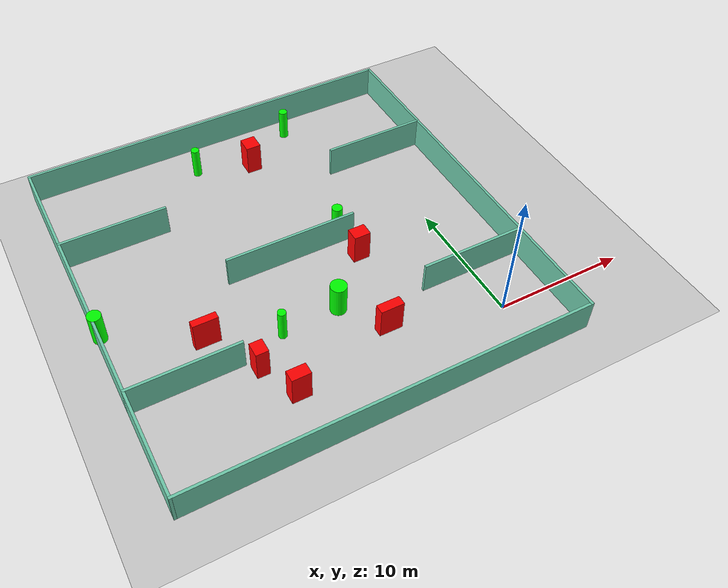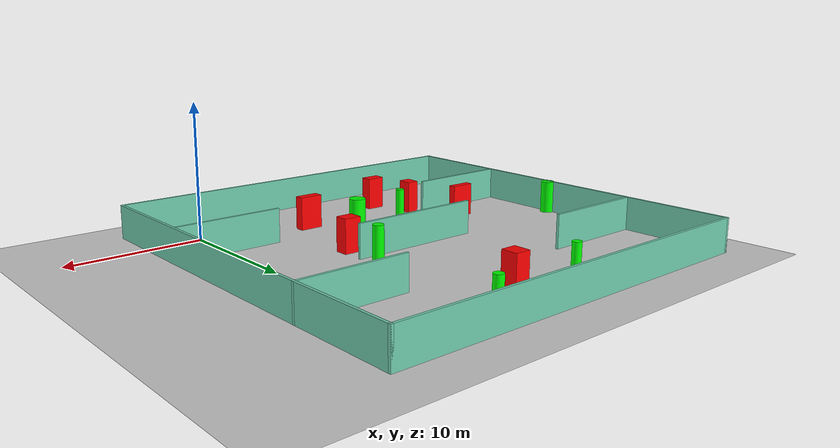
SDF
<sdf version="1.7">
 <world name="default">
  <light name="sun" type="directional">
   <pose>0 0 10 0 -0 0</pose>
   <diffuse>0.8 0.8 0.8 1</diffuse>
   <specular>0.2 0.2 0.2 1</specular>
   <attenuation>
    <range>1000</range>
    <constant>0.9</constant>
    <linear>0.01</linear>
    <quadratic>0.001</quadratic>
   </attenuation>
   <direction>-0.5 0.1 -0.9</direction>
   <spot><inner_angle>0</inner_angle><outer_angle>0</outer_angle><falloff>0</falloff></spot>
  </light>
  <model name="ground_plane">
   <static>1</static>
   <link name="link">
    <collision name="collision">
     <geometry><plane><normal>0 0 1</normal><size>100 100</size></plane></geometry>
     <surface>
      <contact><collide_bitmask>65535</collide_bitmask></contact>
      <friction><ode><mu>100</mu><mu2>50</mu2></ode></friction>
     </surface>
    </collision>
    <visual name="visual">
     <cast_shadows>0</cast_shadows>
     <geometry><plane><normal>0 0 1</normal><size>100 100</size></plane></geometry>
     <material>
      <script><uri>file://media/materials/scripts/gazebo.material</uri><name>Gazebo/Grey</name></script>
     </material>
    </visual>
   </link>
  </model>
  <gravity>0 0 -9.8</gravity>
  <magnetic_field>6e-06 2.3e-05 -4.2e-05</magnetic_field>
  <atmosphere type="adiabatic"/>
  <physics type="ode">
   <max_step_size>0.001</max_step_size>
   <real_time_factor>1</real_time_factor>
   <real_time_update_rate>1000</real_time_update_rate>
  </physics>
  <scene><ambient>0.4 0.4 0.4 1</ambient><background>0.7 0.7 0.7 1</background><shadows>1</shadows></scene>
  <spherical_coordinates>
   <surface_model>EARTH_WGS84</surface_model>
   <latitude_deg>0</latitude_deg>
   <longitude_deg>0</longitude_deg>
   <elevation>0</elevation>
   <heading_deg>0</heading_deg>
  </spherical_coordinates>
  <model name="my_base_walls">
   <link name="Wall_10">
    <collision name="Wall_10_Collision">
     <geometry><box><size>8.2 0.2 2.5</size></box></geometry>
     <pose>0 0 1.25 0 -0 0</pose>
    </collision>
    <visual name="Wall_10_Visual">
     <pose>0 0 1.25 0 -0 0</pose>
     <geometry><box><size>8.2 0.2 2.5</size></box></geometry>
     <material>
      <script><uri>file://media/materials/scripts/gazebo.material</uri><name>Gazebo/Grey</name></script>
      <ambient>0.435294 0.796078 0.67451 1</ambient>
     </material>
     <meta><layer>0</layer></meta>
    </visual>
    <pose>-11 -7 0 0 -0 0</pose>
   </link>
   <link name="Wall_12">
    <collision name="Wall_12_Collision">
     <geometry><box><size>8.2 0.2 2.5</size></box></geometry>
     <pose>0 0 1.25 0 -0 0</pose>
    </collision>
    <visual name="Wall_12_Visual">
     <pose>0 0 1.25 0 -0 0</pose>
     <geometry><box><size>8.2 0.2 2.5</size></box></geometry>
     <material>
      <script><uri>file://media/materials/scripts/gazebo.material</uri><name>Gazebo/Grey</name></script>
      <ambient>0.435294 0.796078 0.67451 1</ambient>
     </material>
     <meta><layer>0</layer></meta>
    </visual>
    <pose>-11 7 0 0 -0 0</pose>
   </link>
   <link name="Wall_14">
    <collision name="Wall_14_Collision">
     <geometry><box><size>8.2 0.2 2.5</size></box></geometry>
     <pose>0 0 1.25 0 -0 0</pose>
    </collision>
    <visual name="Wall_14_Visual">
     <pose>0 0 1.25 0 -0 0</pose>
     <geometry><box><size>8.2 0.2 2.5</size></box></geometry>
     <material>
      <script><uri>file://media/materials/scripts/gazebo.material</uri><name>Gazebo/Grey</name></script>
      <ambient>0.435294 0.796078 0.67451 1</ambient>
     </material>
     <meta><layer>0</layer></meta>
    </visual>
    <pose>11 7 0 0 -0 3.14159</pose>
   </link>
   <link name="Wall_16">
    <collision name="Wall_16_Collision">
     <geometry><box><size>10.2 0.2 2.5</size></box></geometry>
     <pose>0 0 1.25 0 -0 0</pose>
    </collision>
    <visual name="Wall_16_Visual">
     <pose>0 0 1.25 0 -0 0</pose>
     <geometry><box><size>10.2 0.2 2.5</size></box></geometry>
     <material>
      <script><uri>file://media/materials/scripts/gazebo.material</uri><name>Gazebo/Grey</name></script>
      <ambient>0.435294 0.796078 0.67451 1</ambient>
     </material>
     <meta><layer>0</layer></meta>
    </visual>
    <pose>0 0 0 0 -0 3.14159</pose>
   </link>
   <link name="Wall_2">
    <collision name="Wall_2_Collision">
     <geometry><box><size>30.2 0.2 2.5</size></box></geometry>
     <pose>0 0 1.25 0 -0 0</pose>
    </collision>
    <visual name="Wall_2_Visual">
     <pose>0 0 1.25 0 -0 0</pose>
     <geometry><box><size>30.2 0.2 2.5</size></box></geometry>
     <material>
      <script><uri>file://media/materials/scripts/gazebo.material</uri><name>Gazebo/Grey</name></script>
      <ambient>0.435294 0.796078 0.67451 1</ambient>
     </material>
     <meta><layer>0</layer></meta>
    </visual>
    <pose>0 -15 0 0 -0 3.14159</pose>
   </link>
   <link name="Wall_3">
    <collision name="Wall_3_Collision">
     <geometry><box><size>30.2 0.2 2.5</size></box></geometry>
     <pose>0 0 1.25 0 -0 0</pose>
    </collision>
    <visual name="Wall_3_Visual">
     <pose>0 0 1.25 0 -0 0</pose>
     <geometry><box><size>30.2 0.2 2.5</size></box></geometry>
     <material>
      <script><uri>file://media/materials/scripts/gazebo.material</uri><name>Gazebo/Grey</name></script>
      <ambient>0.435294 0.796078 0.67451 1</ambient>
     </material>
     <meta><layer>0</layer></meta>
    </visual>
    <pose>-15 0 0 0 -0 1.5708</pose>
   </link>
   <link name="Wall_4">
    <collision name="Wall_4_Collision">
     <geometry><box><size>30.2 0.2 2.5</size></box></geometry>
     <pose>0 0 1.25 0 -0 0</pose>
    </collision>
    <visual name="Wall_4_Visual">
     <pose>0 0 1.25 0 -0 0</pose>
     <geometry><box><size>30.2 0.2 2.5</size></box></geometry>
     <material>
      <script><uri>file://media/materials/scripts/gazebo.material</uri><name>Gazebo/Grey</name></script>
      <ambient>0.435294 0.796078 0.67451 1</ambient>
     </material>
     <meta><layer>0</layer></meta>
    </visual>
    <pose>0 15 0 0 -0 0</pose>
   </link>
   <link name="Wall_6">
    <collision name="Wall_6_Collision">
     <geometry><box><size>30.2 0.2 2.5</size></box></geometry>
     <pose>0 0 1.25 0 -0 0</pose>
    </collision>
    <visual name="Wall_6_Visual">
     <pose>0 0 1.25 0 -0 0</pose>
     <geometry><box><size>30.2 0.2 2.5</size></box></geometry>
     <material>
      <script><uri>file://media/materials/scripts/gazebo.material</uri><name>Gazebo/Grey</name></script>
      <ambient>0.435294 0.796078 0.67451 1</ambient>
     </material>
     <meta><layer>0</layer></meta>
    </visual>
    <pose>15 0 0 0 -0 1.5708</pose>
   </link>
   <link name="Wall_8">
    <collision name="Wall_8_Collision">
     <geometry><box><size>8.2 0.2 2.5</size></box></geometry>
     <pose>0 0 1.25 0 -0 0</pose>
    </collision>
    <visual name="Wall_8_Visual">
     <pose>0 0 1.25 0 -0 0</pose>
     <geometry><box><size>8.2 0.2 2.5</size></box></geometry>
     <material>
      <script><uri>file://media/materials/scripts/gazebo.material</uri><name>Gazebo/Grey</name></script>
      <ambient>0.435294 0.796078 0.67451 1</ambient>
     </material>
     <meta><layer>0</layer></meta>
    </visual>
    <pose>11 -7 0 0 -0 3.14159</pose>
   </link>
   <static>1</static>
   <pose>-11 11 0 0 -0 0</pose>
  </model>
  <model name="cylinder1">
   <static>1</static>
   <link name="link">
    <inertial>
     <mass>1</mass>
     <inertia><ixx>0.5</ixx><ixy>0</ixy><ixz>0</ixz><iyy>0.5</iyy><iyz>0</iyz><izz>1</izz></inertia>
    </inertial>
    <collision name="collision">
     <geometry><cylinder><radius>0.3467011241290471</radius><length>2.5</length></cylinder></geometry>
    </collision>
    <visual name="visual">
     <geometry><cylinder><radius>0.3467011241290471</radius><length>2.5</length></cylinder></geometry>
     <material>
      <ambient>0 1 0 1</ambient>
      <diffuse>0 1 0 1</diffuse>
      <specular>0.1 0.1 0.1 1</specular>
      <emissive>0 0 0 0</emissive>
     </material>
    </visual>
   </link>
   <pose>-5.283343459478669 24.156021544443437 1.25 0 0 0</pose>
  </model>
  <model name="cylinder2">
   <static>1</static>
   <link name="link">
    <inertial>
     <mass>1</mass>
     <inertia><ixx>0.5</ixx><ixy>0</ixy><ixz>0</ixz><iyy>0.5</iyy><iyz>0</iyz><izz>1</izz></inertia>
    </inertial>
    <collision name="collision">
     <geometry><cylinder><radius>0.5094035748260324</radius><length>2.5</length></cylinder></geometry>
    </collision>
    <visual name="visual">
     <geometry><cylinder><radius>0.5094035748260324</radius><length>2.5</length></cylinder></geometry>
     <material>
      <ambient>0 1 0 1</ambient>
      <diffuse>0 1 0 1</diffuse>
      <specular>0.1 0.1 0.1 1</specular>
      <emissive>0 0 0 0</emissive>
     </material>
    </visual>
   </link>
   <pose>-25.7723569650482 10.531116763761762 1.25 0 0 0</pose>
  </model>
  <model name="cylinder3">
   <static>1</static>
   <link name="link">
    <inertial>
     <mass>1</mass>
     <inertia><ixx>0.5</ixx><ixy>0</ixy><ixz>0</ixz><iyy>0.5</iyy><iyz>0</iyz><izz>1</izz></inertia>
    </inertial>
    <collision name="collision">
     <geometry><cylinder><radius>0.6072306227516677</radius><length>2.5</length></cylinder></geometry>
    </collision>
    <visual name="visual">
     <geometry><cylinder><radius>0.6072306227516677</radius><length>2.5</length></cylinder></geometry>
     <material>
      <ambient>0 1 0 1</ambient>
      <diffuse>0 1 0 1</diffuse>
      <specular>0.1 0.1 0.1 1</specular>
      <emissive>0 0 0 0</emissive>
     </material>
    </visual>
   </link>
   <pose>-10.250245228083406 5.2676565201397185 1.25 0 0 0</pose>
  </model>
  <model name="cylinder4">
   <static>1</static>
   <link name="link">
    <inertial>
     <mass>1</mass>
     <inertia><ixx>0.5</ixx><ixy>0</ixy><ixz>0</ixz><iyy>0.5</iyy><iyz>0</iyz><izz>1</izz></inertia>
    </inertial>
    <collision name="collision">
     <geometry><cylinder><radius>0.3103201416979316</radius><length>2.5</length></cylinder></geometry>
    </collision>
    <visual name="visual">
     <geometry><cylinder><radius>0.3103201416979316</radius><length>2.5</length></cylinder></geometry>
     <material>
      <ambient>0 1 0 1</ambient>
      <diffuse>0 1 0 1</diffuse>
      <specular>0.1 0.1 0.1 1</specular>
      <emissive>0 0 0 0</emissive>
     </material>
    </visual>
   </link>
   <pose>-14.691639084824605 4.990811577522763 1.25 0 0 0</pose>
  </model>
  <model name="cylinder5">
   <static>1</static>
   <link name="link">
    <inertial>
     <mass>1</mass>
     <inertia><ixx>0.5</ixx><ixy>0</ixy><ixz>0</ixz><iyy>0.5</iyy><iyz>0</iyz><izz>1</izz></inertia>
    </inertial>
    <collision name="collision">
     <geometry><cylinder><radius>0.3217670998344212</radius><length>2.5</length></cylinder></geometry>
    </collision>
    <visual name="visual">
     <geometry><cylinder><radius>0.3217670998344212</radius><length>2.5</length></cylinder></geometry>
     <material>
      <ambient>0 1 0 1</ambient>
      <diffuse>0 1 0 1</diffuse>
      <specular>0.1 0.1 0.1 1</specular>
      <emissive>0 0 0 0</emissive>
     </material>
    </visual>
   </link>
   <pose>-13.572455207317358 23.012122601062323 1.25 0 0 0</pose>
  </model>
  <model name="cylinder6">
   <static>1</static>
   <link name="link">
    <inertial>
     <mass>1</mass>
     <inertia><ixx>0.5</ixx><ixy>0</ixy><ixz>0</ixz><iyy>0.5</iyy><iyz>0</iyz><izz>1</izz></inertia>
    </inertial>
    <collision name="collision">
     <geometry><cylinder><radius>0.40002348178442126</radius><length>2.5</length></cylinder></geometry>
    </collision>
    <visual name="visual">
     <geometry><cylinder><radius>0.40002348178442126</radius><length>2.5</length></cylinder></geometry>
     <material>
      <ambient>0 1 0 1</ambient>
      <diffuse>0 1 0 1</diffuse>
      <specular>0.1 0.1 0.1 1</specular>
      <emissive>0 0 0 0</emissive>
     </material>
    </visual>
   </link>
   <pose>-6.728160198605909 12.014673872462515 1.25 0 0 0</pose>
  </model>
  <model name="box1">
   <static>1</static>
   <link name="link">
    <inertial>
     <mass>1</mass>
     <inertia><ixx>0.083</ixx><ixy>0</ixy><ixz>0</ixz><iyy>0.083</iyy><iyz>0</iyz><izz>0.083</izz></inertia>
    </inertial>
    <collision name="collision">
     <geometry><box><size>1.1679315252697102 1.238650986000849 2.5</size></box></geometry>
    </collision>
    <visual name="visual">
     <geometry><box><size>1.1679315252697102 1.238650986000849 2.5</size></box></geometry>
     <material>
      <ambient>1 0 0 1</ambient>
      <diffuse>1 0 0 1</diffuse>
      <specular>0.1 0.1 0.1 1</specular>
      <emissive>0 0 0 0</emissive>
     </material>
    </visual>
    <sensor name="my_contact" type="contact">
     <contact><collision>box_collision</collision><topic>__default_topic__</topic></contact>
    </sensor>
   </link>
   <pose>-9.334332372225255 21.76865233065681 1.25 0 0 0</pose>
  </model>
  <model name="box2">
   <static>1</static>
   <link name="link">
    <inertial>
     <mass>1</mass>
     <inertia><ixx>0.083</ixx><ixy>0</ixy><ixz>0</ixz><iyy>0.083</iyy><iyz>0</iyz><izz>0.083</izz></inertia>
    </inertial>
    <collision name="collision">
     <geometry><box><size>0.94450384360295 1.0885166408229374 2.5</size></box></geometry>
    </collision>
    <visual name="visual">
     <geometry><box><size>0.94450384360295 1.0885166408229374 2.5</size></box></geometry>
     <material>
      <ambient>1 0 0 1</ambient>
      <diffuse>1 0 0 1</diffuse>
      <specular>0.1 0.1 0.1 1</specular>
      <emissive>0 0 0 0</emissive>
     </material>
    </visual>
    <sensor name="my_contact" type="contact">
     <contact><collision>box_collision</collision><topic>__default_topic__</topic></contact>
    </sensor>
   </link>
   <pose>-17.23297051481132 3.095824401949791 1.25 0 0 0</pose>
  </model>
  <model name="box3">
   <static>1</static>
   <link name="link">
    <inertial>
     <mass>1</mass>
     <inertia><ixx>0.083</ixx><ixy>0</ixy><ixz>0</ixz><iyy>0.083</iyy><iyz>0</iyz><izz>0.083</izz></inertia>
    </inertial>
    <collision name="collision">
     <geometry><box><size>1.287133839167761 1.0107036387109176 2.5</size></box></geometry>
    </collision>
    <visual name="visual">
     <geometry><box><size>1.287133839167761 1.0107036387109176 2.5</size></box></geometry>
     <material>
      <ambient>1 0 0 1</ambient>
      <diffuse>1 0 0 1</diffuse>
      <specular>0.1 0.1 0.1 1</specular>
      <emissive>0 0 0 0</emissive>
     </material>
    </visual>
    <sensor name="my_contact" type="contact">
     <contact><collision>box_collision</collision><topic>__default_topic__</topic></contact>
    </sensor>
   </link>
   <pose>-6.476974911113693 9.089747059929806 1.25 0 0 0</pose>
  </model>
  <model name="box4">
   <static>1</static>
   <link name="link">
    <inertial>
     <mass>1</mass>
     <inertia><ixx>0.083</ixx><ixy>0</ixy><ixz>0</ixz><iyy>0.083</iyy><iyz>0</iyz><izz>0.083</izz></inertia>
    </inertial>
    <collision name="collision">
     <geometry><box><size>1.7775305369688867 0.7212743683526921 2.5</size></box></geometry>
    </collision>
    <visual name="visual">
     <geometry><box><size>1.7775305369688867 0.7212743683526921 2.5</size></box></geometry>
     <material>
      <ambient>1 0 0 1</ambient>
      <diffuse>1 0 0 1</diffuse>
      <specular>0.1 0.1 0.1 1</specular>
      <emissive>0 0 0 0</emissive>
     </material>
    </visual>
    <sensor name="my_contact" type="contact">
     <contact><collision>box_collision</collision><topic>__default_topic__</topic></contact>
    </sensor>
   </link>
   <pose>-7.980545396484432 2.1952901312621336 1.25 0 0 0</pose>
  </model>
  <model name="box5">
   <static>1</static>
   <link name="link">
    <inertial>
     <mass>1</mass>
     <inertia><ixx>0.083</ixx><ixy>0</ixy><ixz>0</ixz><iyy>0.083</iyy><iyz>0</iyz><izz>0.083</izz></inertia>
    </inertial>
    <collision name="collision">
     <geometry><box><size>1.4183493517021213 0.8728911337297578 2.5</size></box></geometry>
    </collision>
    <visual name="visual">
     <geometry><box><size>1.4183493517021213 0.8728911337297578 2.5</size></box></geometry>
     <material>
      <ambient>1 0 0 1</ambient>
      <diffuse>1 0 0 1</diffuse>
      <specular>0.1 0.1 0.1 1</specular>
      <emissive>0 0 0 0</emissive>
     </material>
    </visual>
    <sensor name="my_contact" type="contact">
     <contact><collision>box_collision</collision><topic>__default_topic__</topic></contact>
    </sensor>
   </link>
   <pose>-15.833338287057412 0.19227867193339065 1.25 0 0 0</pose>
  </model>
  <model name="box6">
   <static>1</static>
   <link name="link">
    <inertial>
     <mass>1</mass>
     <inertia><ixx>0.083</ixx><ixy>0</ixy><ixz>0</ixz><iyy>0.083</iyy><iyz>0</iyz><izz>0.083</izz></inertia>
    </inertial>
    <collision name="collision">
     <geometry><box><size>1.8690895455828276 0.5510800389152777 2.5</size></box></geometry>
    </collision>
    <visual name="visual">
     <geometry><box><size>1.8690895455828276 0.5510800389152777 2.5</size></box></geometry>
     <material>
      <ambient>1 0 0 1</ambient>
      <diffuse>1 0 0 1</diffuse>
      <specular>0.1 0.1 0.1 1</specular>
      <emissive>0 0 0 0</emissive>
     </material>
    </visual>
    <sensor name="my_contact" type="contact">
     <contact><collision>box_collision</collision><topic>__default_topic__</topic></contact>
    </sensor>
   </link>
   <pose>-19.46803639424049 6.843313214149159 1.25 0 0 0</pose>
  </model>
 </world>
</sdf>
